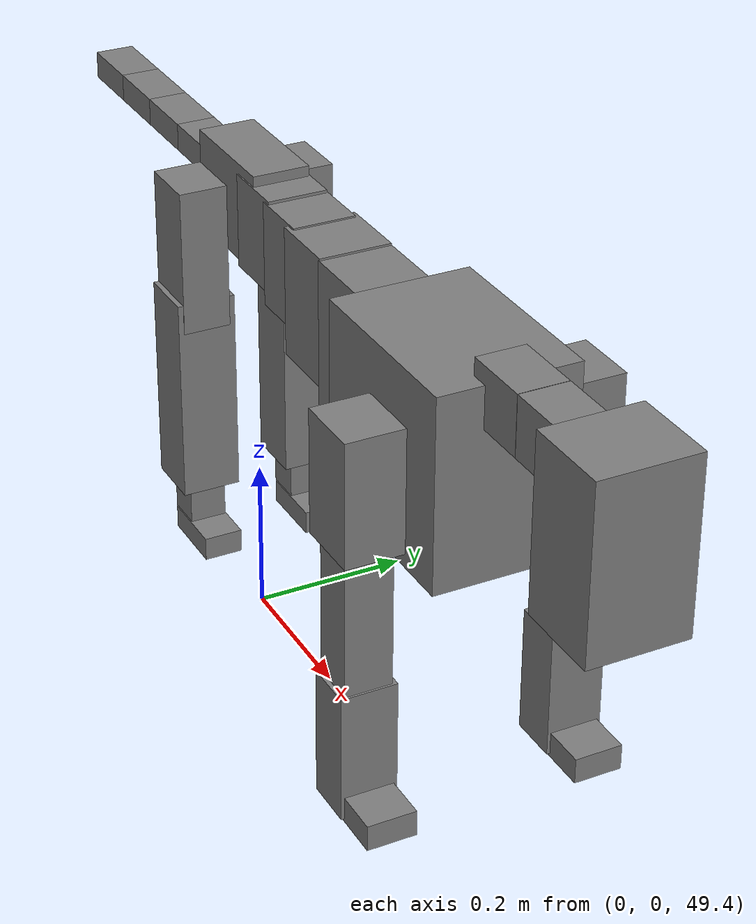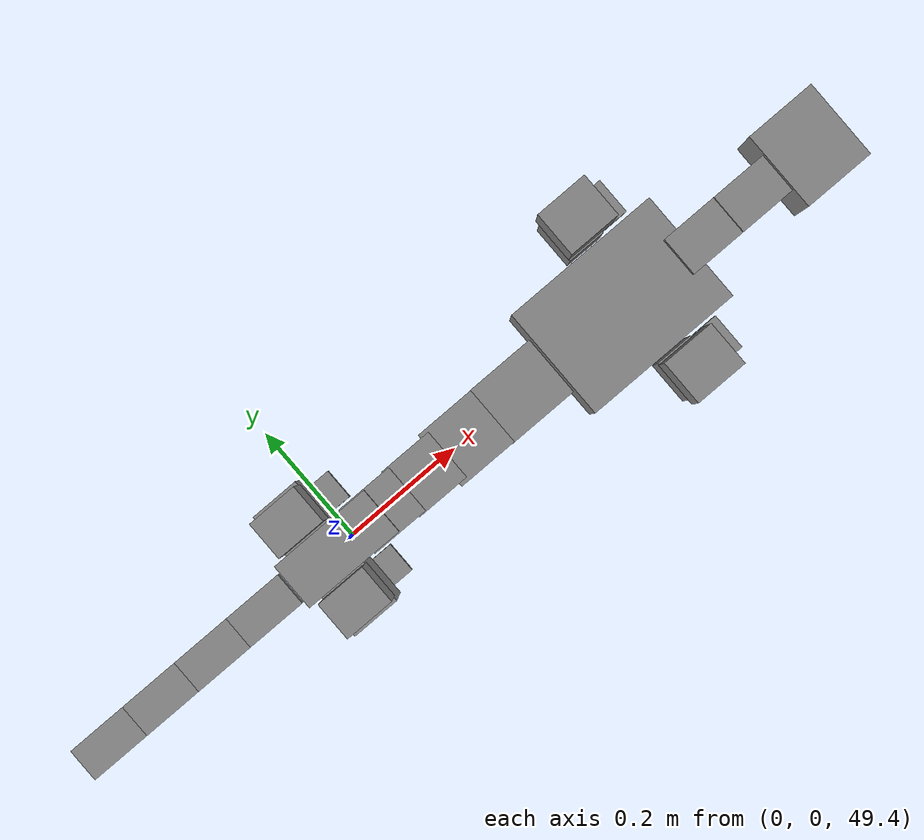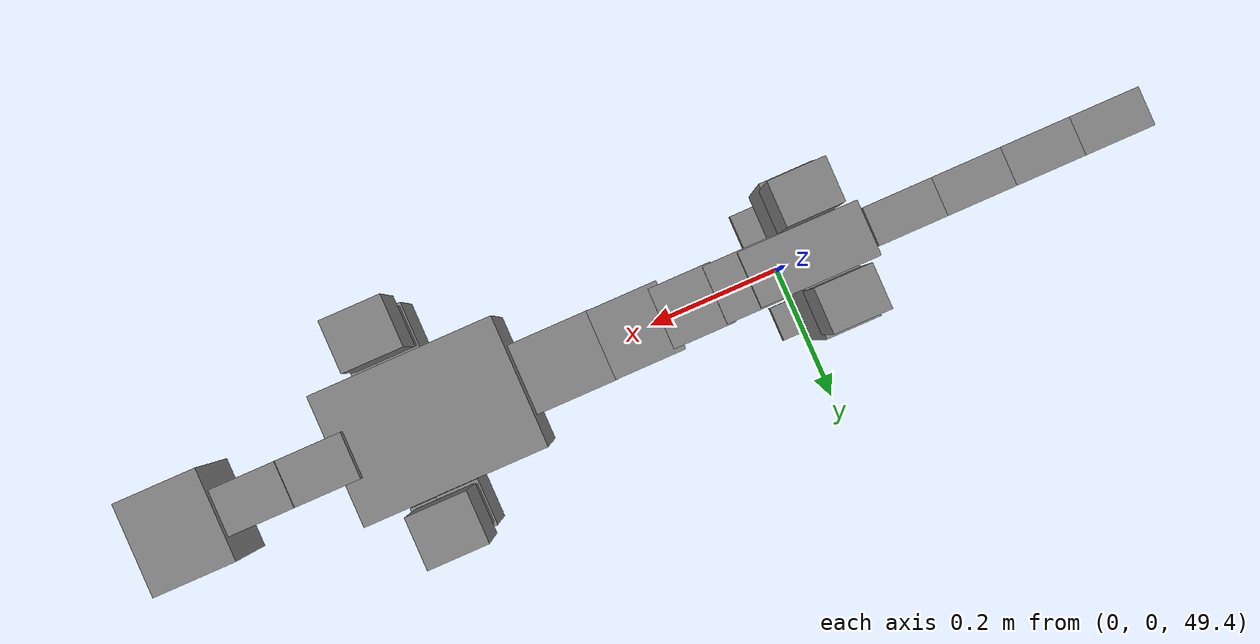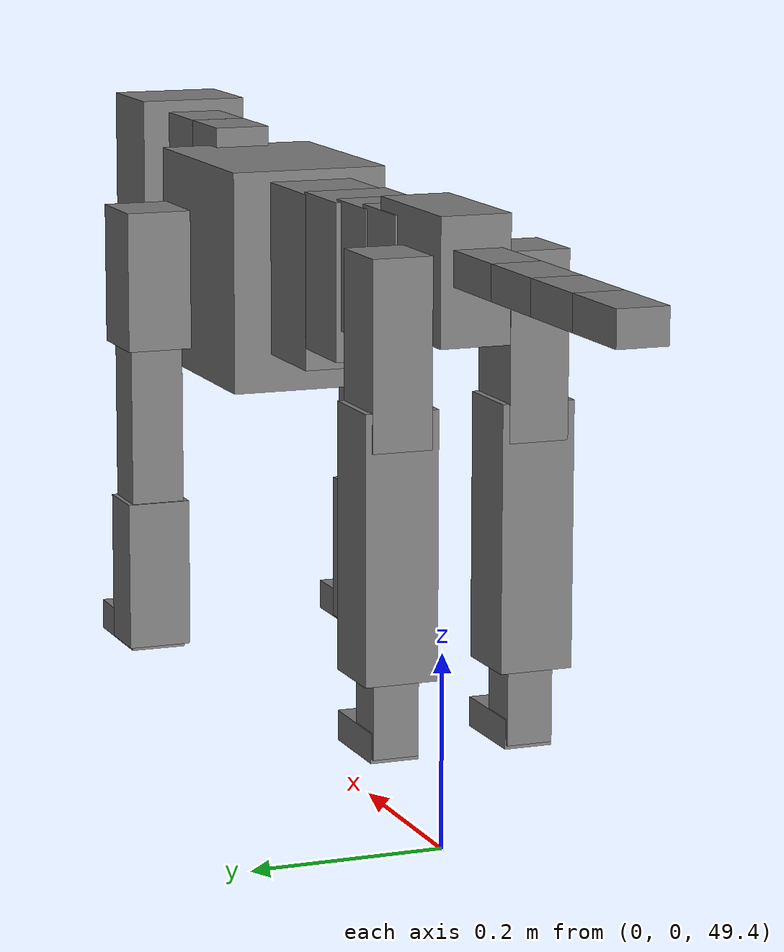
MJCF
<mujoco model="dog">

    <default>
        <joint armature="0.02" stiffness="1" damping="0.2" limited="true"/>
        <geom condim="3" friction="1 0.05 0.05" margin="0.01"/>
        <motor ctrllimited="true" ctrlrange="-1.0 1.0" forcelimited="true" gear="50"/>
    </default>

    <compiler inertiafromgeom="true" angle="radian"/>

    <option timestep="0.016" iterations="50" tolerance="1e-10" solver="Newton" jacobian="dense" cone="pyramidal"/>

    <size nconmax="20000" njmax="60000" nstack="5000000"/>
    <visual>
        <map force="0.1" zfar="30"/>
        <rgba haze="0.15 0.25 0.35 1"/>
        <quality shadowsize="2048"/>
        <global offwidth="800" offheight="800"/>
    </visual>

    <asset>
        <texture type="skybox" builtin="gradient" rgb1="0.3 0.5 0.7" rgb2="0 0 0" width="512" height="512"/>
        <texture name="texplane" type="2d" builtin="checker" rgb1=".2 .3 .4" rgb2=".1 0.15 0.2" width="512" height="512"
                 mark="cross" markrgb=".8 .8 .8"/>
        <texture name="texgeom" type="cube" builtin="flat" mark="cross" width="127" height="1278" rgb1="0.8 0.6 0.4"
                 rgb2="0.8 0.6 0.4" markrgb="1 1 1" random="0.01"/>

        <material name="matplane" reflectance="0.3" texture="texplane" texrepeat="1 1" texuniform="true"/>
        <material name="matgeom" texture="texgeom" texuniform="true" rgba="0.8 0.6 .4 1"/>
    </asset>

    <worldbody>
        <geom name="floor" pos="0 0 0" size="0 0 .25" type="plane" material="matplane" condim="3"/>

        <light directional="false" diffuse=".2 .2 .2" specular="0 0 0" pos="0 0 5" dir="0 0 -1" castshadow="false"/>
        <light mode="targetbodycom" target="torso" directional="false" diffuse=".8 .8 .8" specular="0.3 0.3 0.3"
               pos="0 0 4.0" dir="0 0 -1"/>

        <body name="root" pos="0 0 50">
            <freejoint name="root_1"/>
            <geom type="box" pos="0 0 -0.02" size="0.0774  0.0358  0.063" density="2030"/>

            <body name="spine1" pos="0.054 0 0">
                <joint name="spine1_y" axis="0 1 0" range="0 0.7" limited="true"/>
                <geom type="box" pos="0.02375 0 -0.03" size="0.04375  0.0375  0.05985" density="2030"/>

                <body name="spine2" pos="0.0612 0 0">
                    <joint name="spine2_y" axis="0 1 0" range="-0.15 0.15" limited="true"/>
                    <geom type="box" pos="0.03555  0  -0.04" size="0.04055  0.039  0.06615" density="2030"/>

                    <body name="spine3" pos="0.0730 0 0">
                        <joint name="spine3_y" axis="0 1 0" range="-0.15 0.15" limited="true"/>
                        <geom type="box" pos="0.03555  0  -0.057" size="0.04555  0.0445  0.081" density="2030"/>

                        <body name="spine4" pos="0.0780 0 0">
                            <joint name="spine4_y" axis="0 1 0" range="-0.15 0.15" limited="true"/>
                            <geom type="box" pos="0.05265  0  -0.07" size="0.05265  0.045  0.09135" density="2030"/>

                            <body name="torso" pos="0.1082 0 0">
                                <joint name="torso_y" axis="0 1 0" range="-0.15 0.15" limited="true"/>
                                <geom type="box" pos="0.11925  0  -0.085" size="0.11925  0.085  0.11745"
                                      density="2030"/>

                                <body name="neck1" pos="0.2160  0   0.0180">
                                    <joint name="neck1_y" axis="0 1 0" range="-1.2  -1" limited="true"/>
                                    <geom type="box" pos="0.0423  0  0" size="0.0423  0.03  0.036" density="2325"/>

                                    <body name="neck2" pos="0.0853  0  0">
                                        <joint name="neck2_y" axis="0 1 0" range="0.1  0" limited="true"/>
                                        <geom type="box" pos="0.0423  0  0" size="0.0423  0.03  0.036" density="2325"/>

                                        <body name="head" pos="0.0853  0  0">
                                            <joint name="head_y" axis="0 1 0" range="-0.3  -0.2" limited="true"/>
                                            <geom type="box" pos="0.0531  0  -0.055" size="0.0531  0.06  0.1044"
                                                  density="4030"/>

                                        </body>
                                    </body>
                                </body>

                                <body name="front_shoulder" pos="0.156  0   -0.0480">
                                    <joint name="front_shoulder_y" axis="0 1 0" range="-1 1.5" limited="true"/>
                                    <geom type="box" pos="0 0.13 -0.0485" size="0.0410  0.0351  0.0751" density="1158"/>
                                    <geom type="box" pos="0 -0.13 -0.0485" size="0.0410  0.0351  0.0751"
                                          density="1158"/>

                                    <body name="front_elbow" pos="0  0  -0.0970">
                                        <joint name="front_elbow_y" axis="0 1 0" range="-2 0" limited="true"/>
                                        <geom type="box" pos="0 0.13 -0.1052" size="0.0281  0.0288  0.1052"
                                              density="1081"/>
                                        <geom type="box" pos="0 -0.13 -0.1052" size="0.0281  0.0288  0.1052"
                                              density="1081"/>

                                        <body name="front_wrist" pos="0  0  -0.2103">
                                            <joint name="front_wrist_y" axis="0 1 0" range="-0.2 0" limited="true"/>
                                            <geom type="box" pos="0 0.13 -0.0670" size="0.0308  0.0342  0.0802"
                                                  density="1664"/>
                                            <geom type="box" pos="0 -0.13 -0.0670" size="0.0308  0.0342  0.0802"
                                                  density="1664"/>

                                            <body name="front_finger_end" pos="0  0  -0.1341">
                                                <joint name="front_finger_y" axis="0 1 0" range="-0.4 1"
                                                       limited="true"/>
                                                <geom type="box" pos="0.0301  0.13  -0.0012"
                                                      size="0.0552  0.0301  0.0162" density="1515"/>
                                                <geom type="box" pos="0.0301  -0.13  -0.0012"
                                                      size="0.0552  0.0301  0.0162" density="1515"/>

                                            </body>

                                        </body>
                                    </body>
                                </body>

                            </body>
                        </body>
                    </body>
                </body>
            </body>

            <body name="back_hip" pos="-0.03 0 -0.018">
                <joint name="back_hip_y" axis="0 1 0" range="-1.5 0.3" limited="true"/>
                <geom type="box" pos="0 0.07 -0.0699" size="0.0385  0.0302  0.0927" density="1154"/>
                <geom type="box" pos="0 -0.07 -0.0699" size="0.0385  0.0302  0.0927" density="1154"/>

                <body name="back_knee" pos="0  0  -0.1397">
                    <joint name="back_knee_y" axis="0 1 0" range="0 2.8" limited="true"/>
                    <geom type="box" pos="0 0.07 -0.1171" size="0.0377  0.0371  0.1327" density="1227"/>
                    <geom type="box" pos="0 -0.07 -0.1171" size="0.0377  0.0371  0.1327" density="1227"/>

                    <body name="back_ankle" pos="0  0  -0.2342">
                        <joint name="back_ankle_y" axis="0 1 0" range="-2.2 0" limited="true"/>
                        <geom type="box" pos="0 0.07 -0.0407" size="0.0233  0.0233  0.0519" density="1284"/>
                        <geom type="box" pos="0 -0.07 -0.0407" size="0.0233  0.0233  0.0519" density="1284"/>

                        <body name="back_toe_end" pos="0  0  -0.0814">
                            <joint name="back_toe_y" axis="0 1 0" range="-0.4 1" limited="true"/>
                            <geom type="box" pos="0.0245  0.07  -0.0001" size="0.0449  0.0245  0.0151" density="1515"/>
                            <geom type="box" pos="0.0245  -0.07  -0.0001" size="0.0449  0.0245  0.0151" density="1515"/>

                        </body>
                    </body>
                </body>
            </body>

            <body name="tail1" pos="-0.074 0 -0.006">
                <joint name="tail1_y" axis="0 1 0" range="-0.2 0.2" limited="true"/>
                <geom type="box" pos="-0.0536  0  0" size="0.045  0.025  0.0175" density="1587"/>

                <body name="tail2" pos="-0.09 0 0">
                    <joint name="tail2_y" axis="0 1 0" range="-0.2 0.2" limited="true"/>
                    <geom type="box" pos="-0.0536  0  0" size="0.045  0.025  0.0175" density="1587"/>

                    <body name="tail3" pos="-0.09 0 0">
                        <joint name="tail3_y" axis="0 1 0" range="-0.2 0.2" limited="true"/>
                        <geom type="box" pos="-0.0536  0  0" size="0.045  0.025  0.0175" density="1587"/>

                        <body name="tail4" pos="-0.09 0 0">
                            <joint name="tail4_y" axis="0 1 0" range="-0.2 0.2" limited="true"/>
                            <geom type="box" pos="-0.0536  0  0" size="0.045  0.025  0.0175" density="1587"/>

                        </body>
                    </body>
                </body>
            </body>
        </body>
    </worldbody>

    <actuator>
        <motor joint="spine1_y" forcerange="-150 150     "/>
        <motor joint="spine2_y" forcerange="-150 150     "/>
        <motor joint="spine3_y" forcerange="-150 150     "/>
        <motor joint="spine4_y" forcerange="-150 150     "/>
        <motor joint="torso_y" forcerange="-150 150     "/>
        <motor joint="neck1_y" forcerange="-100 100       "/>
        <motor joint="neck2_y" forcerange="-100 100       "/>
        <motor joint="head_y" forcerange="-150 150       "/>
        <motor joint="front_shoulder_y" forcerange="-153.74 180.08"/>
        <motor joint="front_elbow_y" forcerange="-148.08 161.03"/>
        <motor joint="front_wrist_y" forcerange="-135.63 137.81"/>
        <motor joint="front_finger_y" forcerange="-68.58 51.88"/>
        <motor joint="back_hip_y" forcerange="-364.27 238.38"/>
        <motor joint="back_knee_y" forcerange="-388.79 351.52"/>
        <motor joint="back_angle_y" forcerange="-103.08 169.07"/>
        <motor joint="back_toe_y" forcerange="-81.91 34.18"/>
        <motor joint="tail1_y" forcerange="-50 50     "/>
        <motor joint="tail2_y" forcerange="-50 50     "/>
        <motor joint="tail3_y" forcerange="-50 50     "/>
        <motor joint="tail4_y" forcerange="-50 50     "/>
    </actuator>
</mujoco>
